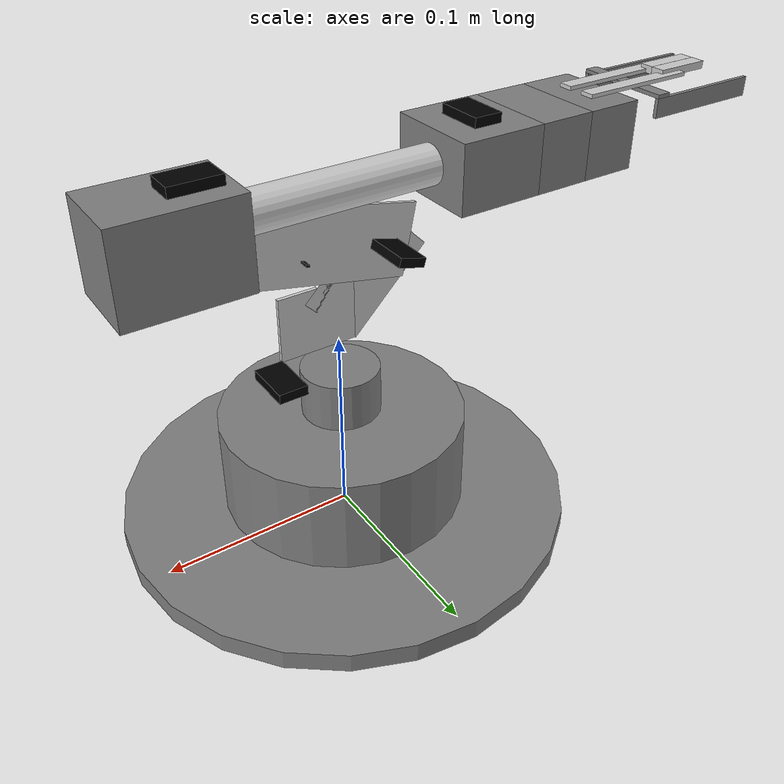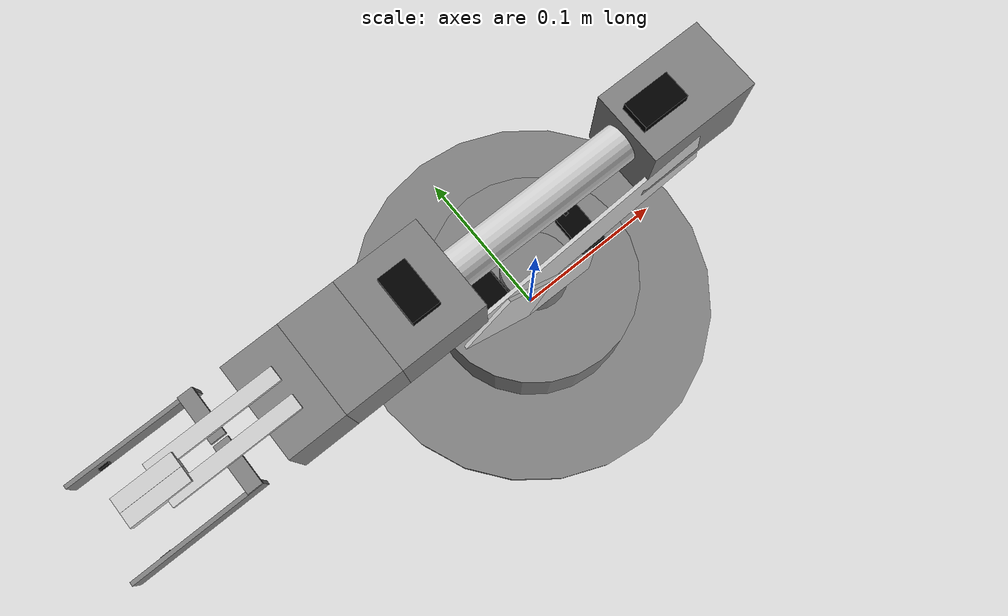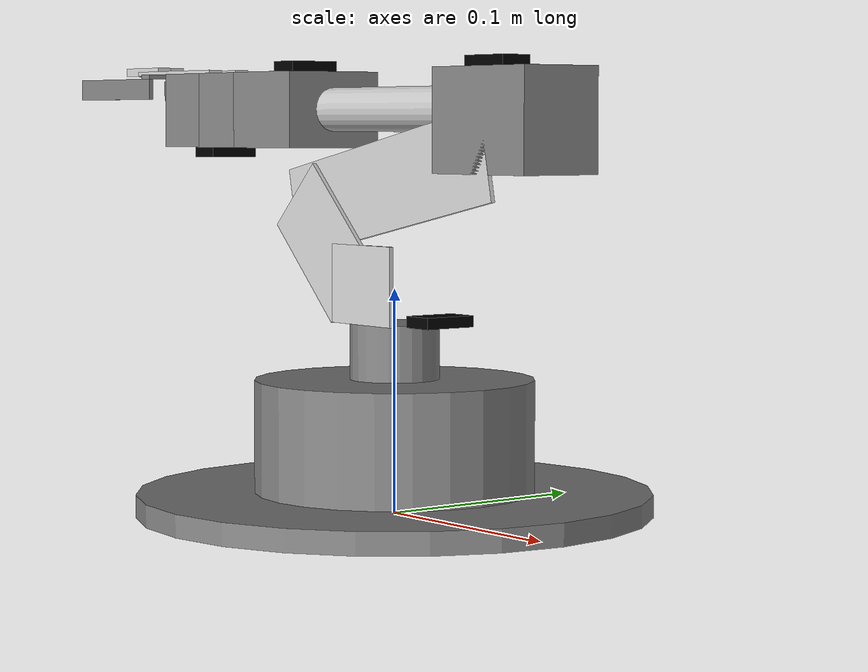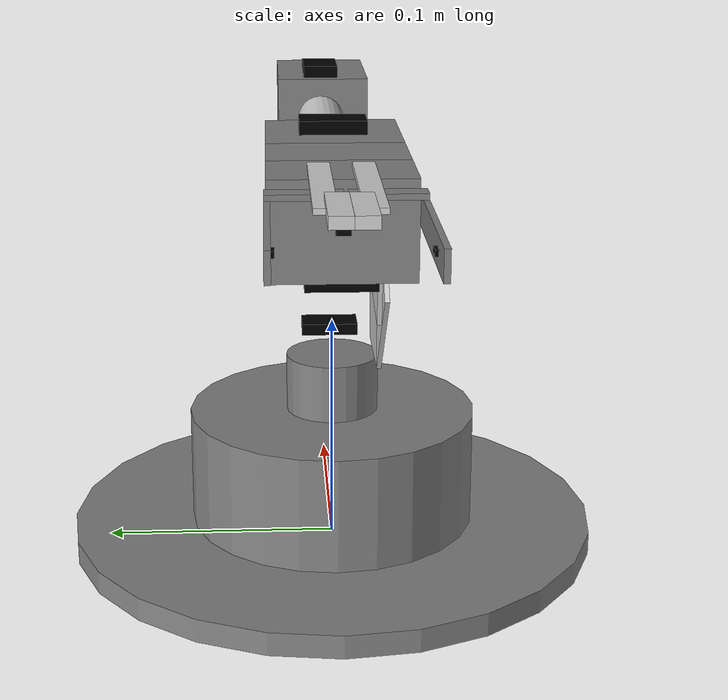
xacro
<?xml version="1.0"?>
<robot name="robot" xmlns:xacro="http://www.ros.org/wiki/xacro">

  <xacro:include filename="$(find model_description)/urdf/model.gazebo" />

  <material name="grey">
    <color rgba="0.5 0.5 0.5 1"/>
  </material>

  <material name="white">
    <color rgba="1 1 1 1"/>
  </material>

  <material name="light_grey">
    <color rgba="0.8 0.8 0.8 1"/>
  </material>

  <material name="black">
    <color rgba="0 0 0 1"/>
  </material>

  <xacro:property name="base1_l" value="0.01"/>
  <xacro:property name="base1_r" value="0.115"/>

  <xacro:property name="base2_l" value="0.05"/>
  <xacro:property name="base2_r" value="0.0625"/>

  <xacro:property name="link1_l" value="0.025"/>
  <xacro:property name="link1_r" value="0.02"/>

  <xacro:property name="for_link2_w" value="0.085"/>
  <xacro:property name="for_link2_d" value="0.002"/>
  <xacro:property name="for_link2_h" value="0.07"/>

  <xacro:property name="link2_w" value="0.14"/>
  <xacro:property name="link2_d" value="0.002"/>
  <xacro:property name="link2_h" value="0.04"/>

  <xacro:property name="link3_w" value="0.06"/>
  <xacro:property name="link3_d" value="0.04"/>
  <xacro:property name="link3_h" value="0.045"/>

  <xacro:property name="link4_l" value="0.1"/>
  <xacro:property name="link4_r" value="0.01"/>

  <xacro:property name="for_link5_w" value="0.0455"/>
  <xacro:property name="for_link5_d" value="0.05"/>
  <xacro:property name="for_link5_h" value="0.035"/>

  <xacro:property name="link5_w" value="0.0595"/>
  <xacro:property name="link5_d" value="0.05"/>
  <xacro:property name="link5_h" value="0.035"/>

  <xacro:macro name="default_inertial" params="mass">
    <inertial>
      <mass value="${mass}"/>
      <inertia ixx="1.0" ixy="0.0" ixz="0.0" iyy="1.0" iyz="0.0" izz="1.0"/>
    </inertial>
  </xacro:macro>

  <link name="world"/>

  <joint name="fixed" type="fixed">
    <parent link="world"/>
    <child link="base1_link"/>
  </joint>

  <!-- base1_link -->
  <link name="base1_link">
    <collision>
      <origin xyz="0 0 ${base1_l/2}" rpy="0 0 0"/>
      <geometry>
	    <cylinder length="${base1_l}" radius="${base1_r}"/>
      </geometry>
    </collision>

    <visual>
      <origin xyz="0 0 ${base1_l/2}" rpy="0 0 0"/>
      <geometry>
	    <cylinder length="${base1_l}" radius="${base1_r}"/>
      </geometry>
      <material name="grey"/>
    </visual>

    <xacro:default_inertial mass="3"/>
  </link>

  <!-- base2_link -->
  <link name="base2_link">
    <collision>
      <geometry>
	    <cylinder length="${base2_l}" radius="${base2_r}"/>
      </geometry>
    </collision>

    <visual>
      <geometry>
	    <cylinder length="${base2_l}" radius="${base2_r}"/>
      </geometry>
      <material name="grey"/>
    </visual>

    <xacro:default_inertial mass="1.5"/>
  </link>

  <!-- base1_to_base2 -->
  <joint name="base1_to_base2" type="fixed">
    <origin xyz="0 0 ${base1_l + base2_l/2}" rpy="0 0 0" />
    <parent link="base1_link"/>
    <child link="base2_link"/>
  </joint>

  <!-- link1 -->
  <link name="link1">
    <collision>
      <geometry>
	    <cylinder length="${link1_l}" radius="${link1_r}"/>
      </geometry>
    </collision>

    <visual>
      <geometry>
	    <cylinder length="${link1_l}" radius="${link1_r}"/>
      </geometry>
      <material name="grey"/>
    </visual>

    <xacro:default_inertial mass="1e-5"/>
  </link>

  <!-- base2_to_link1 -->
  <joint name="base2_to_link1" type="revolute">
	<safety_controller k_position="100.0" k_velocity="40.0" soft_lower_limit="-1.57" soft_upper_limit="1.396"/>
    <origin xyz="0 0 ${base2_l/2 + link1_l/2}" rpy="0 0 0" />
    <parent link="base2_link"/>
    <child link="link1"/>
	<axis xyz="0 0 1"/>
    <limit effort="0.245166" lower="-1.57" upper="1.57" velocity="0.5"/>
  </joint>

  <!-- imu_block1 -->
  <link name="imu_block1">
    <collision>
      <origin xyz="0 0 0" rpy="0 0 0"/>
      <geometry>
        <box size="0.015 0.025 0.005"/>
      </geometry>
    </collision>

    <visual>
      <origin xyz="0 0 0" rpy="0 0 0"/>
      <geometry>
        <box size="0.015 0.025 0.005"/>
      </geometry>
      <material name="black"/>
    </visual>

    <xacro:default_inertial mass="1e-5"/>
  </link>

  <joint name="link1_to_imu_block1" type="fixed">
    <origin xyz="${link1_r/2 + 0.015 + 0.015/2} 0 ${link1_l/2 + 0.005/2}" rpy="0 0 0"/>
    <parent link="link1"/>
    <child link="imu_block1"/>
  </joint>

  <!-- for_link2_1 -->
  <link name="for_link2_1">
    <collision>
      <geometry>
        <box size="0.0425 ${for_link2_d} 0.035"/>
      </geometry>
    </collision>

    <visual>
      <geometry>
        <box size="0.0425 ${for_link2_d} 0.035"/>
      </geometry>
      <material name="light_grey"/>
    </visual>

    <xacro:default_inertial mass="1e-5"/>
  </link>

  <!-- link1_to_for_link2_1 -->
  <joint name="link1_to_for_link2_1" type="fixed">
    <origin xyz="0.00125 ${-link1_r + for_link2_d/2} ${base1_l/2 + link1_l}" rpy="0 0 0" />
    <parent link="link1"/>
    <child link="for_link2_1"/>
  </joint>

  <!-- for_link2_2 -->
  <link name="for_link2_2">
    <collision>
      <geometry>
        <box size="0.06 ${for_link2_d} 0.04"/>
      </geometry>
    </collision>

    <visual>
      <geometry>
        <box size="0.06 ${for_link2_d} 0.04"/>
      </geometry>
      <material name="light_grey"/>
    </visual>

    <xacro:default_inertial mass="1e-5"/>
  </link>

  <!-- for_link2_1_to_for_link2_2 -->
  <joint name="for_link2_1_to_for_link2_2" type="fixed">
    <origin xyz="${-0.06/2 + 0.00125} 0 ${0.04/2 - 0.0025}" rpy="0 0.7854 0" />
    <parent link="for_link2_1"/>
    <child link="for_link2_2"/>
  </joint>

  <!-- link2 -->
  <link name="link2">
    <collision>
    <origin xyz="${0.017 + 0.0125} 0 0.046" rpy="0 ${-0.7854 - 0.2} 0"/>
      <geometry>
        <box size="${link2_w} ${link2_d} ${link2_h}"/>
      </geometry>
    </collision>

    <visual>
    <origin xyz="${0.017 + 0.0125} 0 0.046" rpy="0 ${-0.7854 - 0.2} 0"/>
      <geometry>
        <box size="${link2_w} ${link2_d} ${link2_h}"/>
      </geometry>
      <material name="light_grey"/>
    </visual>

    <xacro:default_inertial mass="1e-5"/>
  </link>

  <!-- for_link2_to_link2 -->
  <joint name="for_link2_2_to_link2" type="revolute">
    <safety_controller k_position="100.0" k_velocity="40.0" soft_lower_limit="-3.14" soft_upper_limit="0"/>
    <origin xyz="-0.017 ${for_link2_d/2 + link2_d/2} 0.004" rpy="0 0 0"/>
    <parent link="for_link2_2"/>
    <child link="link2"/>
    <limit effort="0.245166" lower="-3.14" upper="0" velocity="0.5"/>
    <axis xyz="0 1 0"/>
  </joint>

  <!-- imu_block2 -->
  <link name="imu_block2">
    <collision>
      <origin xyz="0 0 0" rpy="0 0 0"/>
      <geometry>
        <box size="0.015 0.025 0.005"/>
      </geometry>
    </collision>

    <visual>
      <origin xyz="0 0 0" rpy="0 0 0"/>
      <geometry>
        <box size="0.015 0.025 0.005"/>
      </geometry>
      <material name="black"/>
    </visual>

    <xacro:default_inertial mass="1e-5"/>
  </link>

  <joint name="link2_to_imu_block2" type="fixed">
    <origin xyz="0 ${0.025/2 + link2_d/2} 0" rpy="0 ${3.14/2 + 3.14/6 + 3.14} 0"/>
    <parent link="link2"/>
    <child link="imu_block2"/>
  </joint>

  <!-- laser1 -->
  <link name="laser1">
    <collision>
      <origin xyz="0 0 0" rpy="0 0 0"/>
      <geometry>
        <box size="0.001 0.005 0.002"/>
      </geometry>
    </collision>

    <visual>
      <origin xyz="0 0 0" rpy="0 0 0"/>
      <geometry>
        <box size="0.001 0.005 0.002"/>
      </geometry>
      <material name="black"/>
    </visual>

    <xacro:default_inertial mass="1e-5"/>
  </link>

  <joint name="link2_to_laser1" type="fixed">
    <origin xyz="${0.017 + 0.0125} ${-link2_d + link1_r} 0.046" rpy="0 ${3.14 + 3.14/2/2/2} 0"/>
    <parent link="link2"/>
    <child link="laser1"/>
  </joint>

  <!-- link3 -->
  <link name="link3">
    <collision>
    <origin xyz="0 ${link3_d/2 - link2_d/2} 0.015" rpy="0 0 0"/>
      <geometry>
        <box size="${link3_w} ${link3_d} ${link3_h}"/>
      </geometry>
    </collision>

    <visual>
    <origin xyz="0 ${link3_d/2 - link2_d/2} 0.015" rpy="0 0 0"/>
      <geometry>
        <box size="${link3_w} ${link3_d} ${link3_h}"/>
      </geometry>
      <material name="grey"/>
    </visual>

    <xacro:default_inertial mass="1e-5"/>
  </link>

  <!-- link2_to_link3 -->
  <joint name="link2_to_link3" type="revolute">
    <safety_controller k_position="100.0" k_velocity="40.0" soft_lower_limit="0" soft_upper_limit="3.14"/>
    <origin xyz="0.065 0 0.1" rpy="0 -0.7854 0"/>
    <parent link="link2"/>
    <child link="link3"/>
    <limit effort="0.245166" lower="0" upper="3.355" velocity="0.5"/>
    <axis xyz="0 1 0"/>
  </joint>

  <!-- imu_block3 -->
  <link name="imu_block3">
    <collision>
      <origin xyz="0 0 0" rpy="0 0 0"/>
      <geometry>
        <box size="0.025 0.015 0.005"/>
      </geometry>
    </collision>

    <visual>
      <origin xyz="0 0 0" rpy="0 0 0"/>
      <geometry>
        <box size="0.025 0.015 0.005"/>
      </geometry>
      <material name="black"/>
    </visual>

    <xacro:default_inertial mass="1e-5"/>
  </link>

  <joint name="link3_to_imu_block3" type="fixed">
    <origin xyz="${-0.025/2} ${link3_d/2} ${link3_h - 0.005}" rpy="0 0 0"/>
    <parent link="link3"/>
    <child link="imu_block3"/>
  </joint>

 <!-- link4 -->
  <link name="link4">
    <collision>
    <origin xyz="0 0 0" rpy="0 -1.57 0"/>
      <geometry>
        <cylinder length="${link4_l}" radius="${link4_r}"/>
      </geometry>
    </collision>

    <visual>
    <origin xyz="0 0 0" rpy="0 -1.57 0"/>
      <geometry>
        <cylinder length="${link4_l}" radius="${link4_r}"/>
      </geometry>
      <material name="light_grey"/>
    </visual>

    <xacro:default_inertial mass="1e-5"/>
  </link>

  <!-- link3_to_link4 -->
  <joint name="link3_to_link4" type="revolute">
    <safety_controller k_position="100.0" k_velocity="40.0" soft_lower_limit="-1.57" soft_upper_limit="1.57"/>
    <origin xyz="${-link3_w/2 - link4_l/2} ${link3_d/2} ${link4_r*2}" rpy="0 0 0"/>
    <parent link="link3"/>
    <child link="link4"/>
    <limit effort="0.245166" lower="-1.57" upper="1.57" velocity="0.5"/>
    <axis xyz="1 0 0"/>
  </joint>

  <!-- for_link5_1 -->
  <link name="for_link5_1">
    <collision>
      <geometry>
        <box size="${for_link5_w} ${for_link5_d} ${for_link5_h}"/>
      </geometry>
    </collision>

    <visual>
      <geometry>
        <box size="${for_link5_w} ${for_link5_d} ${for_link5_h}"/>
      </geometry>
      <material name="grey"/>
    </visual>

    <xacro:default_inertial mass="1e-5"/>
  </link>

  <!-- link4_to_for_link5_1 -->
  <joint name="link4_to_for_link5_1" type="fixed">
    <origin xyz="${-for_link5_w/2 - link4_l/2} 0 0" rpy="0 0 0"/>
    <parent link="link4"/>
    <child link="for_link5_1"/>
  </joint>

  <!-- imu_block4 -->
  <link name="imu_block4">
    <collision>
      <origin xyz="0 0 0" rpy="0 0 0"/>
      <geometry>
        <box size="0.015 0.025 0.005"/>
      </geometry>
    </collision>

    <visual>
      <origin xyz="0 0 0" rpy="0 0 0"/>
      <geometry>
        <box size="0.015 0.025 0.005"/>
      </geometry>
      <material name="black"/>
    </visual>

    <xacro:default_inertial mass="1e-5"/>
  </link>

  <joint name="for_link5_1_to_imu_block4" type="fixed">
    <origin xyz="0 0 ${0.005/2 + for_link5_h/2}" rpy="0 0 0"/>
    <parent link="for_link5_1"/>
    <child link="imu_block4"/>
  </joint>

  <!-- link5 -->
  <link name="link5">
    <collision>
    <origin xyz="${-link5_w/2/2} 0 0" rpy="0 0 0"/>
      <geometry>
        <box size="${link5_w/2} ${link5_d} ${link5_h}"/>
      </geometry>
    </collision>

    <visual>
    <origin xyz="${-link5_w/2/2} 0 0" rpy="0 0 0"/>
      <geometry>
        <box size="${link5_w/2} ${link5_d} ${link5_h}"/>
      </geometry>
      <material name="grey"/>
    </visual>

    <xacro:default_inertial mass="1e-5"/>
  </link>

  <!-- for_link5_1_to_link5 -->
  <joint name="for_link5_1_to_link5" type="revolute">
    <safety_controller k_position="100.0" k_velocity="40.0" soft_lower_limit="-1.57" soft_upper_limit="1.57"/>
    <origin xyz="${-for_link5_w/2} 0 0" rpy="0 0 0"/>
    <parent link="for_link5_1"/>
    <child link="link5"/>
    <limit effort="0.245166" lower="-1.57" upper="1.57" velocity="0.5"/>
    <axis xyz="0 1 0"/>
  </joint>

  <!-- for_link5_2 -->
  <link name="for_link5_2">
    <collision>
      <geometry>
        <box size="${link5_w/2} ${link5_d} ${link5_h}"/>
      </geometry>
    </collision>

    <visual>
      <geometry>
        <box size="${link5_w/2} ${link5_d} ${link5_h}"/>
      </geometry>
      <material name="grey"/>
    </visual>

    <xacro:default_inertial mass="1e-5"/>
  </link>

  <!-- link5_to_for_link5_2 -->
  <joint name="link5_to_for_link5_2" type="fixed">
    <origin xyz="${-link5_w/2 - link5_w/2/2} 0 0" rpy="0 0 0"/>
    <parent link="link5"/>
    <child link="for_link5_2"/>
  </joint>

  <!-- imu_block5 -->
  <link name="imu_block5">
    <collision>
      <origin xyz="0 0 0" rpy="0 0 0"/>
      <geometry>
        <box size="0.015 0.025 0.005"/>
      </geometry>
    </collision>

    <visual>
      <origin xyz="0 0 0" rpy="0 0 0"/>
      <geometry>
        <box size="0.015 0.025 0.005"/>
      </geometry>
      <material name="black"/>
    </visual>

    <xacro:default_inertial mass="1e-5"/>
  </link>

  <joint name="for_link5_2_to_imu_block5" type="fixed">
    <origin xyz="0 0 ${-0.005/2 - for_link5_h/2}" rpy="0 0 0"/>
    <parent link="for_link5_2"/>
    <child link="imu_block5"/>
  </joint>

 <!-- laser4 -->
  <link name="laser4">
    <collision>
      <geometry>
        <box size="0.001 0.005 0.002"/>
      </geometry>
    </collision>

    <visual>
      <geometry>
        <box size="0.001 0.005 0.002"/>
      </geometry>
      <material name="black"/>
    </visual>

    <xacro:default_inertial mass="1e-5"/>
  </link>

  <joint name="for_link5_2_to_laser4" type="fixed">
    <origin xyz="${-link5_w/2/2 - 0.001/2} 0 0" rpy="0 3.14 0"/>
    <parent link="for_link5_2"/>
    <child link="laser4"/>
  </joint>

  <!-- GRIPPER -->

  <!-- right_finger -->
  <link name="right_finger">
    <collision>
    <origin xyz="${-0.065/3 + link5_d/6 - link5_d/3} 0 0" rpy="0 0 0"/>
      <geometry>
        <box size="0.065 0.0075 0.002"/>
      </geometry>
    </collision>

    <visual>
    <origin xyz="${-0.065/3 + link5_d/6 - link5_d/3} 0 0" rpy="0 0 0"/>
      <geometry>
        <box size="0.065 0.0075 0.002"/>
      </geometry>
      <material name="light_grey"/>
    </visual>

    <xacro:default_inertial mass="1e-5"/>
  </link>

  <!-- for_link5_2_to_right_finger -->
  <joint name="for_link5_2_to_right_finger" type="revolute">
    <safety_controller k_position="100.0" k_velocity="40.0" soft_lower_limit="-1.57" soft_upper_limit="0"/>
    <origin xyz="0 ${link5_d/2 - 0.01975 + 0.0075/2 + 0.0075/4 + 0.0004 - 0.0075/2} ${link5_h/2 + 0.002/2}" rpy="0 0 0"/>
    <parent link="for_link5_2"/>
    <child link="right_finger"/>
    <limit effort="0.980665" lower="-1.57" upper="0" velocity="0.5"/>
    <axis xyz="0 0 1"/>
  </joint>

  <!-- right_tip -->
  <link name="right_tip">
    <collision>
      <geometry>
        <box size="0.03 0.0075 0.004"/>
      </geometry>
    </collision>

    <visual>
      <geometry>
        <box size="0.03 0.0075 0.004"/>
      </geometry>
      <material name="light_grey"/>
    </visual>

    <xacro:default_inertial mass="1e-5"/>
  </link>

  <!-- right_finger_to_right_tip -->
  <joint name="right_finger_to_right_tip" type="fixed">
    <origin xyz="${-0.065/2 - 0.065/2} ${-0.0075/2} 0.001" rpy="0 0 0"/>
    <parent link="right_finger"/>
    <child link="right_tip"/>
  </joint>

  <!-- left_finger -->
  <link name="left_finger">
    <collision>
    <origin xyz="${-0.065/3 + link5_d/6 - link5_d/3} 0 0" rpy="0 0 0"/>
      <geometry>
        <box size="0.065 0.0075 0.002"/>
      </geometry>
    </collision>

    <visual>
    <origin xyz="${-0.065/3 + link5_d/6 - link5_d/3} 0 0" rpy="0 0 0"/>
      <geometry>
        <box size="0.065 0.0075 0.002"/>
      </geometry>
      <material name="light_grey"/>
    </visual>

    <xacro:default_inertial mass="1e-5"/>
  </link>

  <!-- for_link5_2_to_left_finger -->
  <joint name="for_link5_2_to_left_finger" type="revolute">
    <safety_controller k_position="100.0" k_velocity="40.0" soft_lower_limit="0" soft_upper_limit="1.57"/>
    <origin xyz="0 ${-link5_d/2 + 0.01975 - 0.0075/2 - 0.0075/4 - 0.0004 +0.0075/2} ${link5_h/2 + 0.002/2}" rpy="0 0 0"/>
    <parent link="for_link5_2"/>
    <child link="left_finger"/>
    <limit effort="0.980665" lower="0" upper="1.57" velocity="0.5"/>
    <axis xyz="0 0 1"/>
  </joint>

  <!-- left_tip -->
  <link name="left_tip">
    <collision>
      <geometry>
        <box size="0.03 0.0075 0.004"/>
      </geometry>
    </collision>

    <visual>
      <geometry>
        <box size="0.03 0.0075 0.004"/>
      </geometry>
      <material name="light_grey"/>
    </visual>

    <xacro:default_inertial mass="1e-5"/>
  </link>

  <!-- left_finger_to_left_tip -->
  <joint name="left_finger_to_left_tip" type="fixed">
    <origin xyz="${-0.065/2 - 0.065/2} ${0.0075/2} 0.001" rpy="0 0 0"/>
    <parent link="left_finger"/>
    <child link="left_tip"/>
  </joint>

  <!-- for_laser_right_1 -->
  <link name="for_laser_right_1">
    <collision>
      <geometry>
        <box size="0.0075 0.025 0.002"/>
      </geometry>
    </collision>

    <visual>
      <geometry>
        <box size="0.0075 0.025 0.002"/>
      </geometry>
      <material name="grey"/>
    </visual>

    <xacro:default_inertial mass="1e-5"/>
  </link>

  <!-- right_finger_to_for_laser_right_1 -->
  <joint name="right_finger_to_for_laser_right_1" type="fixed">
    <origin xyz="${-0.065/2} ${0.015/2 - 0.0075/2 + 0.0075/4} ${-0.002/2 -0.002/2}" rpy="0 0 0"/>
    <parent link="right_finger"/>
    <child link="for_laser_right_1"/>
  </joint>

  <!-- for_laser_right_2 -->
  <link name="for_laser_right_2">
    <collision>
      <geometry>
        <box size="0.065 0.002 0.01"/>
      </geometry>
    </collision>

    <visual>
      <geometry>
        <box size="0.065 0.002 0.01"/>
      </geometry>
      <material name="grey"/>
    </visual>

    <xacro:default_inertial mass="1e-5"/>
  </link>

  <!-- for_laser_right_1_to_for_laser_right_2 -->
  <joint name="for_laser_right_1_to_for_laser_right_2" type="fixed">
    <origin xyz="${-0.065/2 + 0.0075/2} ${0.025/2 - 0.002/2} ${-0.01/2 - 0.002/2}" rpy="0 0 0"/>
    <parent link="for_laser_right_1"/>
    <child link="for_laser_right_2"/>
  </joint>

  <!-- laser3 -->
  <link name="laser3">
    <collision>
      <geometry>
        <box size="0.001 0.005 0.002"/>
      </geometry>
    </collision>

    <visual>
      <geometry>
        <box size="0.001 0.005 0.002"/>
      </geometry>
      <material name="black"/>
    </visual>

    <xacro:default_inertial mass="1e-5"/>
  </link>

  <joint name="for_laser_right_2_to_laser3" type="fixed">
    <origin xyz="${-0.065/4} ${-0.001/2 - 0.002/2} 0" rpy="0 0 -1.57"/>
    <parent link="for_laser_right_2"/>
    <child link="laser3"/>
  </joint>

  <!-- for_laser_left_1 -->
  <link name="for_laser_left_1">
    <collision>
      <geometry>
        <box size="0.0075 0.025 0.002"/>
      </geometry>
    </collision>

    <visual>
      <geometry>
        <box size="0.0075 0.025 0.002"/>
      </geometry>
      <material name="grey"/>
    </visual>

    <xacro:default_inertial mass="1e-5"/>
  </link>

  <!-- left_finger_to_for_laser_left_1 -->
  <joint name="left_finger_to_for_laser_left_1" type="fixed">
    <origin xyz="${-0.065/2} ${-0.015/2 + 0.0075/2 - 0.0075/4} ${-0.002/2 -0.002/2}" rpy="0 0 0"/>
    <parent link="left_finger"/>
    <child link="for_laser_left_1"/>
  </joint>

  <!-- for_laser_left_2 -->
  <link name="for_laser_left_2">
    <collision>
      <geometry>
        <box size="0.065 0.002 0.01"/>
      </geometry>
    </collision>

    <visual>
      <geometry>
        <box size="0.065 0.002 0.01"/>
      </geometry>
      <material name="grey"/>
    </visual>

    <xacro:default_inertial mass="1e-5"/>
  </link>

  <!-- for_laser_left_1_to_for_laser_left_2 -->
  <joint name="for_laser_left_1_to_for_laser_left_2" type="fixed">
    <origin xyz="${-0.065/2 + 0.0075/2} ${-0.025/2 + 0.002/2} ${-0.01/2 - 0.002/2}" rpy="0 0 0"/>
    <parent link="for_laser_left_1"/>
    <child link="for_laser_left_2"/>
  </joint>

  <!-- laser2 -->
  <link name="laser2">
    <collision>
      <geometry>
        <box size="0.001 0.005 0.002"/>
      </geometry>
    </collision>

    <visual>
      <geometry>
        <box size="0.001 0.005 0.002"/>
      </geometry>
      <material name="black"/>
    </visual>

    <xacro:default_inertial mass="1e-5"/>
  </link>

  <joint name="for_laser_left_2_to_laser2" type="fixed">
    <origin xyz="${-0.065/4} ${0.001/2 + 0.002/2} 0" rpy="0 0 1.57"/>
    <parent link="for_laser_left_2"/>
    <child link="laser2"/>
  </joint>

  <transmission name="tran1">
    <type>transmission_interface/SimpleTransmission</type>
    <joint name="base2_to_link1">
      <hardwareInterface>hardware_interface/EffortJointInterface</hardwareInterface>
    </joint>
    <actuator name="motor1">
      <hardwareInterface>hardware_interface/EffortJointInterface</hardwareInterface>
      <mechanicalReduction>1</mechanicalReduction>
    </actuator>
  </transmission>

  <transmission name="tran2">
    <type>transmission_interface/SimpleTransmission</type>
    <joint name="for_link2_2_to_link2">
      <hardwareInterface>hardware_interface/EffortJointInterface</hardwareInterface>
    </joint>
    <actuator name="motor2">
      <hardwareInterface>hardware_interface/EffortJointInterface</hardwareInterface>
      <mechanicalReduction>1</mechanicalReduction>
    </actuator>
  </transmission>

  <transmission name="tran3">
    <type>transmission_interface/SimpleTransmission</type>
    <joint name="link2_to_link3">
      <hardwareInterface>hardware_interface/EffortJointInterface</hardwareInterface>
    </joint>
    <actuator name="motor3">
      <hardwareInterface>hardware_interface/EffortJointInterface</hardwareInterface>
      <mechanicalReduction>1</mechanicalReduction>
    </actuator>
  </transmission>

  <transmission name="tran4">
    <type>transmission_interface/SimpleTransmission</type>
    <joint name="link3_to_link4">
      <hardwareInterface>hardware_interface/EffortJointInterface</hardwareInterface>
    </joint>
    <actuator name="motor4">
      <hardwareInterface>hardware_interface/EffortJointInterface</hardwareInterface>
      <mechanicalReduction>1</mechanicalReduction>
    </actuator>
  </transmission>

  <transmission name="tran5">
    <type>transmission_interface/SimpleTransmission</type>
    <joint name="for_link5_1_to_link5">
      <hardwareInterface>hardware_interface/EffortJointInterface</hardwareInterface>
    </joint>
    <actuator name="motor5">
      <hardwareInterface>hardware_interface/EffortJointInterface</hardwareInterface>
      <mechanicalReduction>1</mechanicalReduction>
    </actuator>
  </transmission>

</robot>
